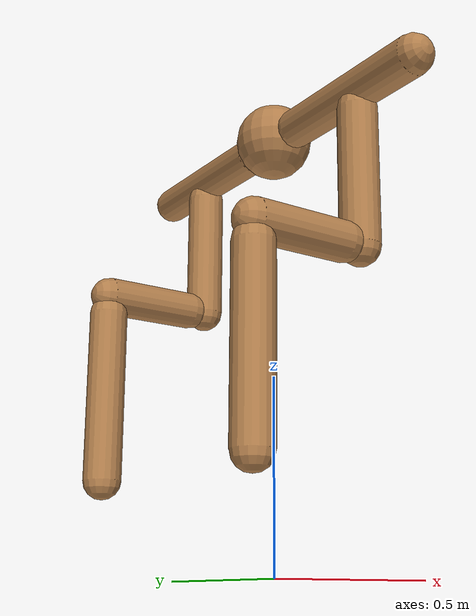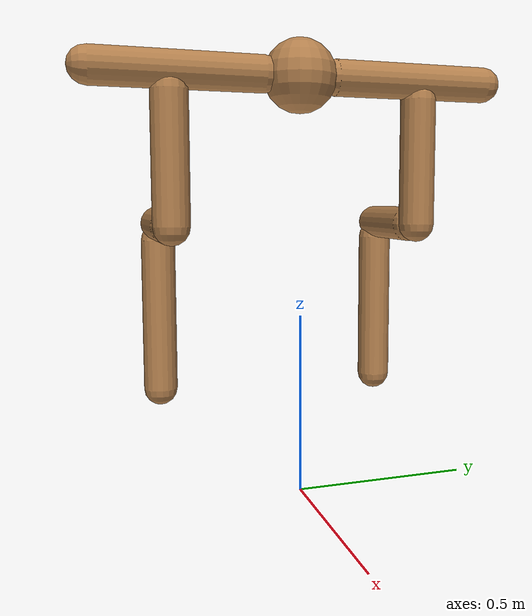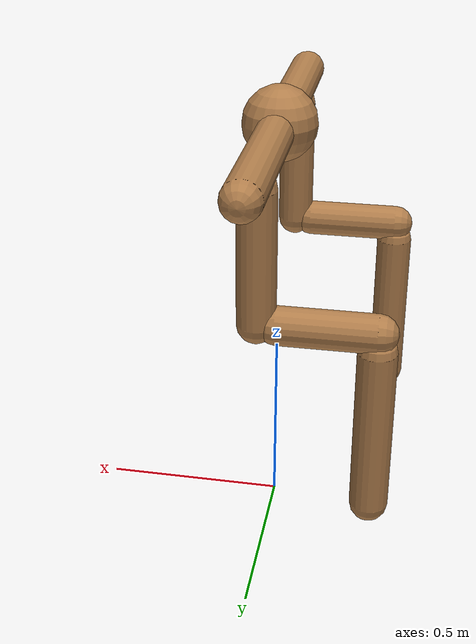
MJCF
<?xml version='1.0' encoding='UTF-8'?>
<!-- Universal Animal Template: unimal -->
<mujoco model="unimal">
  <compiler angle="degree"/>
  <size njmax="2000" nconmax="500"/>
  <option timestep=".005">
    <flag filterparent="disable"/>
  </option>
  <!-- Common defaults to make search space tractable -->
  <default>
    <!-- Define motor defaults -->
    <motor ctrlrange="-1 1" ctrllimited="true"/>
    <!-- Define joint defaults -->
    <default class="normal_joint">
      <joint type="hinge" damping="1" stiffness="1" armature="1" limited="true" range="-120 120" solimplimit="0 0.99 0.01"/>
    </default>
    <default class="walker_joint">
      <joint type="hinge" damping="0.2" stiffness="1" armature=".01" limited="true" range="-120 120" solimplimit="0 0.99 0.01"/>
    </default>
    <default class="stiff_joint">
      <joint type="hinge" damping="5" stiffness="10" armature=".01" limited="true" solimplimit="0 0.99 0.01"/>
    </default>
    <default class="free">
      <joint limited="false" damping="0" armature="0" stiffness="0"/>
    </default>
    <default class="growth_site">
      <site size="1e-6 1e-6 1e-6"/>
    </default>
    <default class="torso_growth_site">
      <site size="1e-6 1e-6 1e-6"/>
    </default>
    <default class="mirror_growth_site">
      <site size="1e-6 1e-6 1e-6"/>
    </default>
    <default class="btm_pos_site">
      <site size="1e-6 1e-6 1e-6"/>
    </default>
    <default class="box_face_site">
      <site size="1e-6 1e-6 1e-6"/>
    </default>
    <default class="imu_vel">
      <site type="box" size="0.05" rgba="1 0 0 0"/>
    </default>
    <default class="touch_site">
      <site group="3" rgba="0 0 1 .3"/>
    </default>
    <default class="food_site">
      <site material="food" size="0.15"/>
    </default>
    <!-- Define geom defaults -->
    <geom type="capsule" condim="3" friction="0.7 0.1 0.1" material="self"/>
  </default>
  <worldbody>
    <light diffuse="1 1 1" directional="true" exponent="1" pos="0 0 8" specular="0.1 0.1 0.1" dir="0 0 -1"/>
    <!-- Programatically generated xml goes here -->
    <body name="torso/0" pos="0 0 1.15">
      <joint name="root" type="free" class="free"/>
      <site name="root" class="imu_vel"/>
      <geom name="torso/0" type="sphere" size="0.1" condim="3" density="700"/>
      <camera name="side" pos="0 -7 2" xyaxes="1 0 0 0 1 2" mode="trackcom"/>
      <site name="torso/0" class="growth_site" pos="0 0 0"/>
      <site name="torso/btm_pos/0" class="btm_pos_site" pos="0 0 -0.1"/>
      <site name="torso/touch/0" class="touch_site" size="0.11"/>
      <site name="torso/vertical/0" class="torso_growth_site" pos="0 0 -0.1"/>
      <body name="limb/13" pos="0.0 0.1 0.0">
        <joint name="limbx/13" type="hinge" class="normal_joint" range="0 60" pos="0.0 -0.05 0.0" axis="1.0 0.0 0.0"/>
        <geom name="limb/13" type="capsule" fromto="0.0 0.0 0.0 0.0 0.45 0.0" size="0.05" density="1000"/>
        <site name="limb/mid/13" class="mirror_growth_site" pos="0.0 0.25 0.0"/>
        <site name="limb/btm/13" class="mirror_growth_site" pos="0.0 0.45 0.0"/>
        <site name="limb/btm_pos/13" class="btm_pos_site" pos="0.0 0.45 0.0"/>
        <site name="limb/touch/13" class="touch_site" size="0.060000000000000005" fromto="0.0 0.0 0.0 0.0 0.45 0.0" type="capsule"/>
        <body name="limb/46" pos="0.0 0.25 -0.05">
          <joint name="limbx/46" type="hinge" class="normal_joint" range="0 45" pos="0.0 0.0 0.05" axis="1.0 0.0 0.0"/>
          <geom name="limb/46" type="capsule" fromto="0.0 0.0 0.0 0.0 0.0 -0.35" size="0.05" density="1000"/>
          <site name="limb/mid/46" class="mirror_growth_site" pos="0.0 0.0 -0.2"/>
          <site name="limb/btm/46" class="mirror_growth_site" pos="0.0 0.0 -0.35"/>
          <site name="limb/btm_pos/46" class="btm_pos_site" pos="0.0 0.0 -0.4"/>
          <site name="limb/touch/46" class="touch_site" size="0.060000000000000005" fromto="0.0 0.0 0.0 0.0 0.0 -0.35" type="capsule"/>
          <body name="limb/48" pos="-0.05 0.0 -0.35">
            <joint name="limbx/48" type="hinge" class="normal_joint" range="0 45" pos="0.05 0.0 0.0" axis="0.0 0.0 -1.0"/>
            <geom name="limb/48" type="capsule" fromto="0.0 0.0 0.0 -0.25 0.0 0.0" size="0.05" density="1000"/>
            <site name="limb/mid/48" class="mirror_growth_site" pos="-0.15 0.0 0.0"/>
            <site name="limb/btm/48" class="mirror_growth_site" pos="-0.25 0.0 0.0"/>
            <site name="limb/btm_pos/48" class="btm_pos_site" pos="-0.3 0.0 0.0"/>
            <site name="limb/touch/48" class="touch_site" size="0.060000000000000005" fromto="0.0 0.0 0.0 -0.25 0.0 0.0" type="capsule"/>
            <body name="limb/50" pos="-0.25 0.0 -0.05">
              <joint name="limby/50" type="hinge" class="normal_joint" range="-60 0" pos="0.0 0.0 0.05" axis="0.0 1.0 0.0"/>
              <geom name="limb/50" type="capsule" fromto="0.0 0.0 0.0 0.0 0.0 -0.45" size="0.05" density="1000"/>
              <site name="limb/mid/50" class="mirror_growth_site" pos="0.0 0.0 -0.25"/>
              <site name="limb/btm/50" class="mirror_growth_site" pos="0.0 0.0 -0.45"/>
              <site name="limb/btm_pos/50" class="btm_pos_site" pos="0.0 0.0 -0.5"/>
              <site name="limb/touch/50" class="touch_site" size="0.060000000000000005" fromto="0.0 0.0 0.0 0.0 0.0 -0.45" type="capsule"/>
            </body>
          </body>
        </body>
      </body>
      <body name="limb/14" pos="0.0 -0.1 0.0">
        <joint name="limbx/14" type="hinge" class="normal_joint" range="0 60" pos="0.0 0.05 0.0" axis="1.0 0.0 -0.0"/>
        <geom name="limb/14" type="capsule" fromto="0.0 0.0 0.0 0.0 -0.45 0.0" size="0.05" density="1000"/>
        <site name="limb/mid/14" class="mirror_growth_site" pos="0.0 -0.25 0.0"/>
        <site name="limb/btm/14" class="mirror_growth_site" pos="0.0 -0.45 0.0"/>
        <site name="limb/btm_pos/14" class="btm_pos_site" pos="0.0 -0.45 0.0"/>
        <site name="limb/touch/14" class="touch_site" size="0.060000000000000005" fromto="0.0 0.0 0.0 0.0 -0.45 0.0" type="capsule"/>
        <body name="limb/47" pos="0.0 -0.25 -0.05">
          <joint name="limbx/47" type="hinge" class="normal_joint" range="0 45" pos="0.0 0.0 0.05" axis="1.0 0.0 0.0"/>
          <geom name="limb/47" type="capsule" fromto="0.0 0.0 0.0 0.0 0.0 -0.35" size="0.05" density="1000"/>
          <site name="limb/mid/47" class="mirror_growth_site" pos="0.0 0.0 -0.2"/>
          <site name="limb/btm/47" class="mirror_growth_site" pos="0.0 0.0 -0.35"/>
          <site name="limb/btm_pos/47" class="btm_pos_site" pos="0.0 0.0 -0.4"/>
          <site name="limb/touch/47" class="touch_site" size="0.060000000000000005" fromto="0.0 0.0 0.0 0.0 0.0 -0.35" type="capsule"/>
          <body name="limb/49" pos="-0.05 0.0 -0.35">
            <joint name="limbx/49" type="hinge" class="normal_joint" range="0 45" pos="0.05 0.0 0.0" axis="0.0 0.0 -1.0"/>
            <geom name="limb/49" type="capsule" fromto="0.0 0.0 0.0 -0.25 0.0 0.0" size="0.05" density="1000"/>
            <site name="limb/mid/49" class="mirror_growth_site" pos="-0.15 0.0 0.0"/>
            <site name="limb/btm/49" class="mirror_growth_site" pos="-0.25 0.0 0.0"/>
            <site name="limb/btm_pos/49" class="btm_pos_site" pos="-0.3 0.0 0.0"/>
            <site name="limb/touch/49" class="touch_site" size="0.060000000000000005" fromto="0.0 0.0 0.0 -0.25 0.0 0.0" type="capsule"/>
            <body name="limb/51" pos="-0.25 0.0 -0.05">
              <joint name="limby/51" type="hinge" class="normal_joint" range="-60 0" pos="0.0 0.0 0.05" axis="0.0 1.0 0.0"/>
              <geom name="limb/51" type="capsule" fromto="0.0 0.0 0.0 0.0 0.0 -0.45" size="0.05" density="1000"/>
              <site name="limb/mid/51" class="mirror_growth_site" pos="0.0 0.0 -0.25"/>
              <site name="limb/btm/51" class="mirror_growth_site" pos="0.0 0.0 -0.45"/>
              <site name="limb/btm_pos/51" class="btm_pos_site" pos="0.0 0.0 -0.5"/>
              <site name="limb/touch/51" class="touch_site" size="0.060000000000000005" fromto="0.0 0.0 0.0 0.0 0.0 -0.45" type="capsule"/>
            </body>
          </body>
        </body>
      </body>
    </body>
  </worldbody>
  <actuator>
    <motor joint="limbx/13" gear="150" name="limbx/13"/>
    <motor joint="limbx/46" gear="300" name="limbx/46"/>
    <motor joint="limbx/48" gear="300" name="limbx/48"/>
    <motor joint="limby/50" gear="200" name="limby/50"/>
    <motor joint="limbx/14" gear="150" name="limbx/14"/>
    <motor joint="limbx/47" gear="300" name="limbx/47"/>
    <motor joint="limbx/49" gear="300" name="limbx/49"/>
    <motor joint="limby/51" gear="200" name="limby/51"/>
  </actuator>
  <sensor>
    <accelerometer name="torso_accel" site="root"/>
    <gyro name="torso_gyro" site="root"/>
    <velocimeter name="torso_vel" site="root"/>
    <subtreeangmom name="unimal_am" body="torso/0"/>
    <touch name="torso/0" site="torso/touch/0"/>
    <touch name="limb/13" site="limb/touch/13"/>
    <touch name="limb/46" site="limb/touch/46"/>
    <touch name="limb/48" site="limb/touch/48"/>
    <touch name="limb/50" site="limb/touch/50"/>
    <touch name="limb/14" site="limb/touch/14"/>
    <touch name="limb/47" site="limb/touch/47"/>
    <touch name="limb/49" site="limb/touch/49"/>
    <touch name="limb/51" site="limb/touch/51"/>
  </sensor>
  <!-- Add hfield assets -->
  <asset/>
  <!-- List of contacts to exclude -->
  <contact/>
  <!-- Define material, texture etc -->
  <asset>
    <material name="grid" texture="grid" texrepeat="1 1" texuniform="true" reflectance="0.1"/>
    <material name="hfield" texture="hfield" texrepeat="1 1" texuniform="true" reflectance="0.1"/>
    <material name="wall" texture="wall" texrepeat="1 1" texuniform="true" reflectance=".5"/>
    <material name="platform" texture="platform" texrepeat="1 1" texuniform="true" reflectance=".5"/>
    <material name="boundary" texture="boundary" texrepeat="1 1" texuniform="true" reflectance=".5"/>
    <material name="jump" texture="jump" texrepeat="1 1" texuniform="true" reflectance=".5"/>
    <material name="goal" rgba="1 0 0 1"/>
    <material name="food" rgba="0 0 1 1" emission="1"/>
    <material name="init_position" rgba="0 1 0 0.7"/>
    <material name="self" rgba=".7 .5 .3 1"/>
    <material name="self_invisible" rgba=".7 .5 .3 0"/>
    <material name="self_default" rgba=".7 .5 .3 1"/>
    <material name="self_highlight" rgba="0 .5 .3 1"/>
    <material name="effector" rgba=".7 .4 .2 1"/>
    <material name="effector_default" rgba=".7 .4 .2 1"/>
    <material name="effector_highlight" rgba="0 .5 .3 1"/>
    <material name="decoration" rgba=".3 .5 .7 1"/>
    <material name="eye" rgba="0 .2 1 1"/>
    <material name="target" rgba=".6 .3 .3 1"/>
    <material name="target_default" rgba=".6 .3 .3 1"/>
    <material name="target_highlight" rgba=".6 .3 .3 .4"/>
    <material name="site" rgba=".5 .5 .5 .3"/>
    <material name="ball" texture="ball"/>
  </asset>
  <asset>
    <texture name="grid" type="2d" builtin="checker" rgb1="0.4 0.4 0.4" rgb2="0.4 0.4 0.4" width="300" height="300" mark="edge" markrgb="0.2 0.2 0.2"/>
    <texture name="hfield" type="2d" builtin="checker" rgb1="0.4 0.4 0.4" rgb2="0.4 0.4 0.4" width="300" height="300" mark="edge" markrgb="0.2 0.2 0.2"/>
    <texture name="wall" type="2d" builtin="flat" rgb1="0.9 0.7 0" rgb2="0.9 0.7 0" width="300" height="300"/>
    <texture name="platform" type="2d" builtin="flat" rgb1="0.3 0 0.8" rgb2="0.3 0 0.8" width="300" height="300"/>
    <texture name="boundary" type="2d" builtin="flat" rgb1="0.3 0.3 0.3" rgb2="0.3 0.3 0.3" width="300" height="300"/>
    <texture name="jump" type="2d" builtin="flat" rgb1="0.3 0.3 0.3" rgb2="0.3 0.3 0.3" width="300" height="300"/>
    <texture name="skybox" type="skybox" builtin="gradient" rgb1="1 1 1" rgb2="0.6 0.6 0.6" width="800" height="800"/>
    <texture name="ball" builtin="checker" mark="cross" width="151" height="151" rgb1="0.1 0.1 0.1" rgb2="0.9 0.9 0.9" markrgb="1 1 1"/>
  </asset>
  <visual>
    <headlight ambient="0.6 0.6 0.6" diffuse="0.3 0.3 0.3" specular="0 0 0"/>
    <map znear=".01" shadowclip="0.5"/>
    <quality shadowsize="16384"/>
  </visual>
</mujoco>
